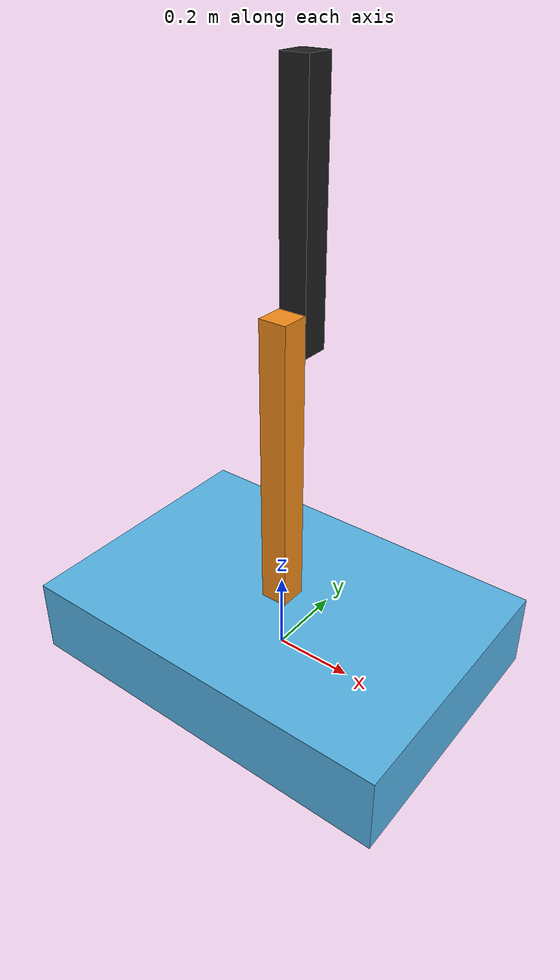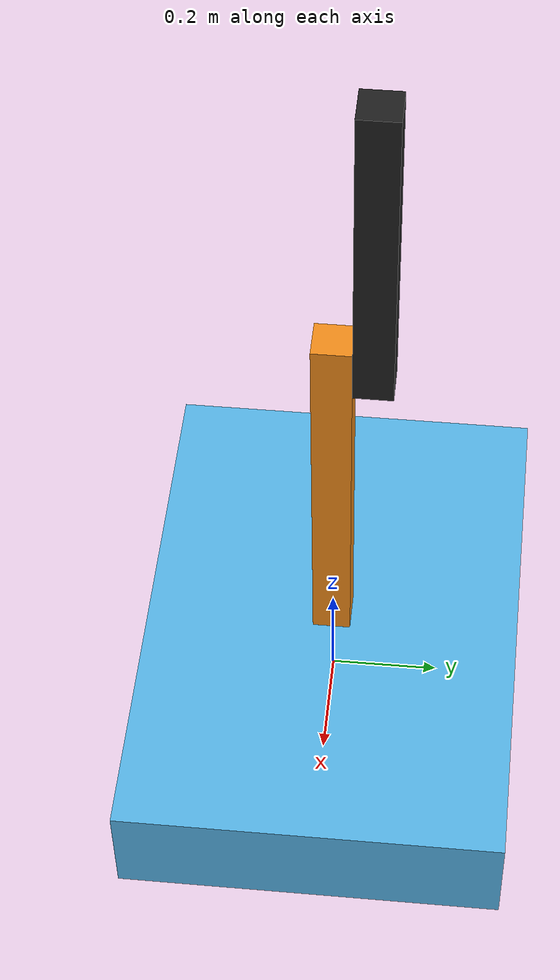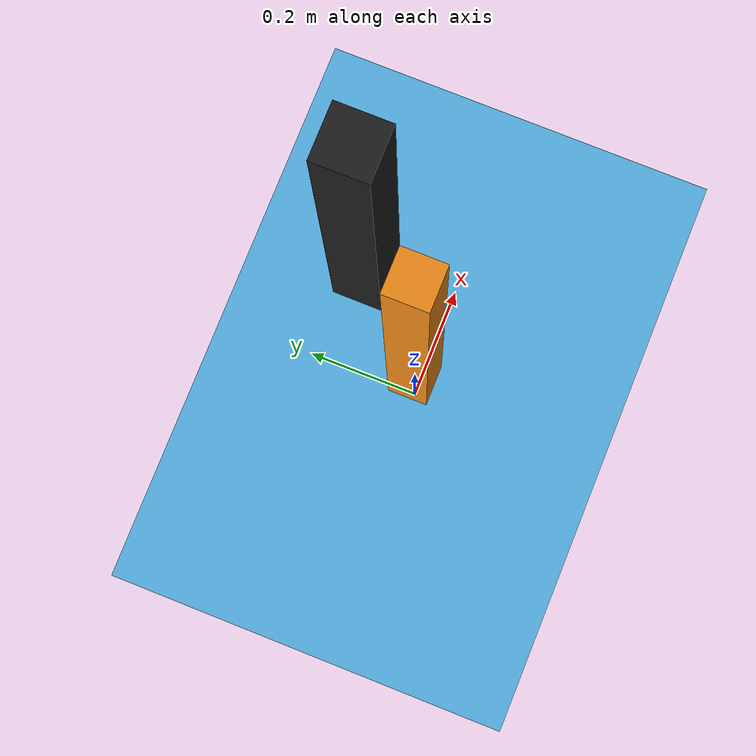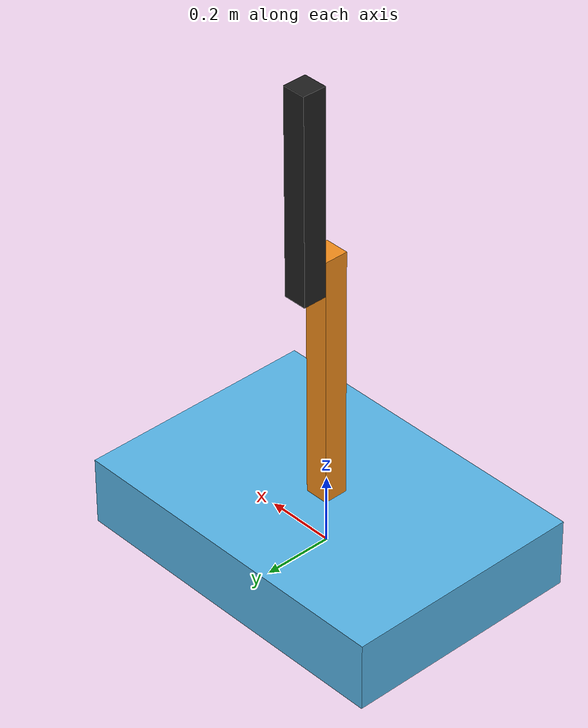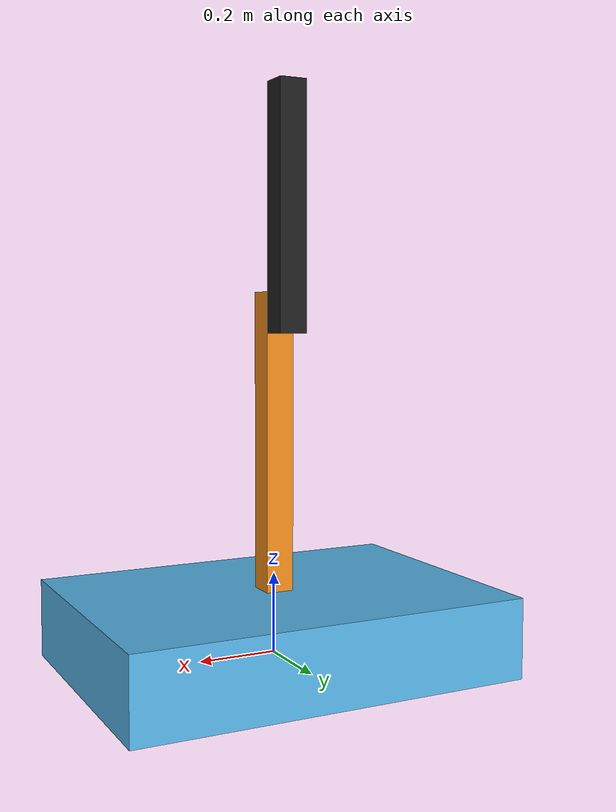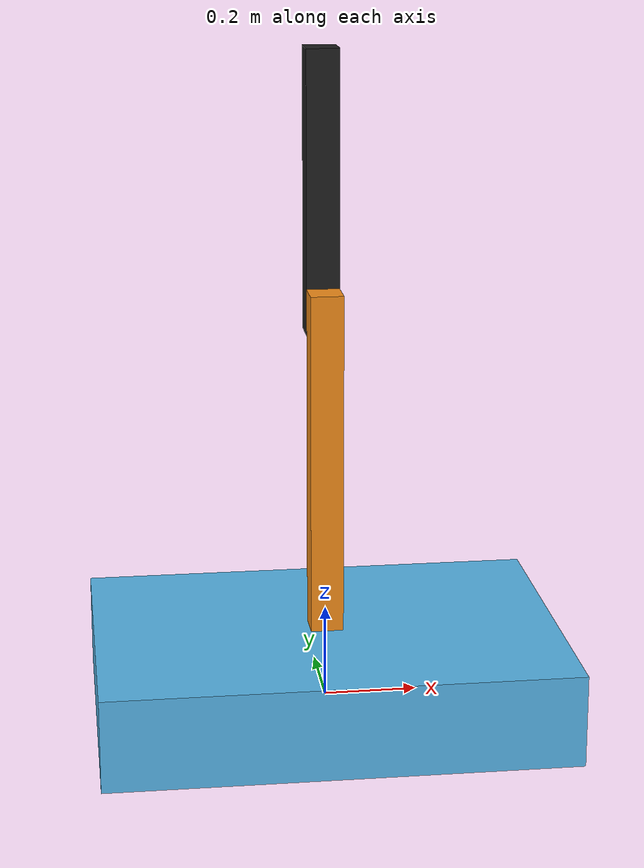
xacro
<?xml version="1.0"?>
<!-- Revolute-Revolute Manipulator -->
<robot name="rrbot" xmlns:xacro="http://www.ros.org/wiki/xacro">

  <!-- Constants for robot dimensions -->
  <xacro:property name="PI" value="3.1415926535897931"/>
  <xacro:property name="mass" value="0.2" /> <!-- arbitrary value for mass -->
  <xacro:property name="width" value="0.07" /> <!-- Square dimensions (widthxwidth) of beams -->
  <xacro:property name="height1" value="0.8" /> <!-- Link 1 -->
  <xacro:property name="height2" value="0.6" /> <!-- Link 2 -->
  <xacro:property name="height3" value="1" /> <!-- Link 3 -->
  <xacro:property name="camera_link" value="0.05" /> <!-- Size of square 'camera' box -->
  <xacro:property name="axel_offset" value="0.05" /> <!-- Space btw top of beam and the each joint -->

  <!-- Import all Gazebo-customization elements, including Gazebo colors -->
  <xacro:include filename="$(find rrbot_description)/urdf/rrbot.gazebo" />
  <!-- Import Rviz colors -->
  <xacro:include filename="$(find rrbot_description)/urdf/materials.xacro" />

  <!-- Used for fixing robot to Gazebo 'base_link' -->
<link name="world"/>

 <link name="base_footprint">
   <visual>
      <origin xyz="0 0 0.01" rpy="0 0 0" />
      <geometry>
        <box size="1.00 0.70 0.2" />
      </geometry>
    </visual>
    <collision>
      <origin xyz="0 0 0.01" rpy="0 0 0" />
      <geometry>
        <box size="2.00 2.00 0.1" />
      </geometry>
    </collision>
    <inertial>
      <origin xyz="0 0 0.02" rpy="0 0 0"/>
      <mass value="0.5"/>
      <inertia
	  ixx="${mass / 12.0 * (width*width + height1*height1)}" ixy="0.0" ixz="0.0"
	  iyy="${mass / 12.0 * (height1*height1 + width*width)}" iyz="0.0"
	  izz="${mass / 12.0 * (width*width + width*width)}"/>
    </inertial>
  </link>

  <joint name="f_1" type="prismatic">
    <parent link="world"/>
    <origin xyz="0 0 0.05" rpy="0 0 0"/>
    <child link="base_footprint"/>
    <axis xyz="1 0 0"/>
    <limit velocity="1" effort="0.01" lower="-10" upper="10" />
  </joint>

  <joint name="fixed" type="fixed">
    <parent link="base_footprint"/>
    <origin xyz="0 0 0.05" rpy="0 0 0"/>
    <child link="link1"/>
  </joint>

  <!-- Base Link -->
  <link name="link1">
    <collision>
      <origin xyz="0 ${width} ${height1/2}" rpy="0 0 0"/>
      <geometry>
	<box size="${width} ${width} ${height1}"/>
      </geometry>
    </collision>

    <visual>
      <origin xyz="0 0 ${height1/2}" rpy="0 0 0"/>
      <geometry>
	<box size="${width} ${width} ${height1}"/>
      </geometry>
      <material name="orange"/>
    </visual>

    <inertial>
      <origin xyz="0 0 ${height1/2}" rpy="0 0 0"/>
      <mass value="${mass}"/>
      <inertia
	  ixx="${mass / 12.0 * (width*width + height1*height1)}" ixy="0.0" ixz="0.0"
	  iyy="${mass / 12.0 * (height1*height1 + width*width)}" iyz="0.0"
	  izz="${mass / 12.0 * (width*width + width*width)}"/>
    </inertial>
  </link>

  <joint name="joint1" type="revolute">
    <parent link="link1"/>
    <child link="link2"/>
    <origin xyz="0 ${width} ${height1 - axel_offset}" rpy="0 0 0"/>
    <axis xyz="0 1 0"/>
    <dynamics damping="0.1"/>
    <limit velocity="10000" effort="10000" lower="${-PI}" upper="${PI}" />
  </joint>

  <!-- Middle Link -->
  <link name="link2">
    <collision>
      <origin xyz="0 0 ${height2/2 - axel_offset}" rpy="0 0 0"/>
      <geometry>
	<box size="${width} ${width} ${height2}"/>
      </geometry>
    </collision>

    <visual>
      <origin xyz="0 0 ${height2/2 - axel_offset}" rpy="0 0 0"/>
      <geometry>
	<box size="${width} ${width} ${height2}"/>
      </geometry>
      <material name="black"/>
    </visual>

    <inertial>
      <origin xyz="0 0 ${height2/2 - axel_offset}" rpy="0 0 0"/>
      <mass value="${mass}"/>
      <inertia
	  ixx="${mass / 12.0 * (width*width + height2*height2)}" ixy="0.0" ixz="0.0"
	  iyy="${mass / 12.0 * (height2*height2 + width*width)}" iyz="0.0"
	  izz="${mass / 12.0 * (width*width + width*width)}"/>
    </inertial>
  </link>

  <transmission name="tran1">
    <type>transmission_interface/SimpleTransmission</type>
    <joint name="joint1">
      <hardwareInterface>EffortJointInterface</hardwareInterface>
    </joint>
    <actuator name="motor1">
      <hardwareInterface>EffortJointInterface</hardwareInterface>
      <mechanicalReduction>100</mechanicalReduction>
    </actuator>
  </transmission>

  <plugin name="gazebo_ros_control" filename="libgazebo_ros_control.so">
    <robotNamespace>/rrbot</robotNamespace>
  </plugin>

  <gazebo>
    <plugin name="object_controller" filename="libgazebo_ros_force_based_move.so">
      <commandTopic>turtle1/cmd_vel</commandTopic>
      <odometryTopic>odom</odometryTopic>
      <odometryFrame>odom</odometryFrame>
      <odometryRate>2.0</odometryRate>
      <robotBaseFrame>base_footprint</robotBaseFrame>
      <x_velocity_p_gain>50000</x_velocity_p_gain>
      <y_velocity_p_gain>50000</y_velocity_p_gain>
      <yaw_velocity_p_gain>4</yaw_velocity_p_gain>
    </plugin>
  </gazebo>
</robot>
